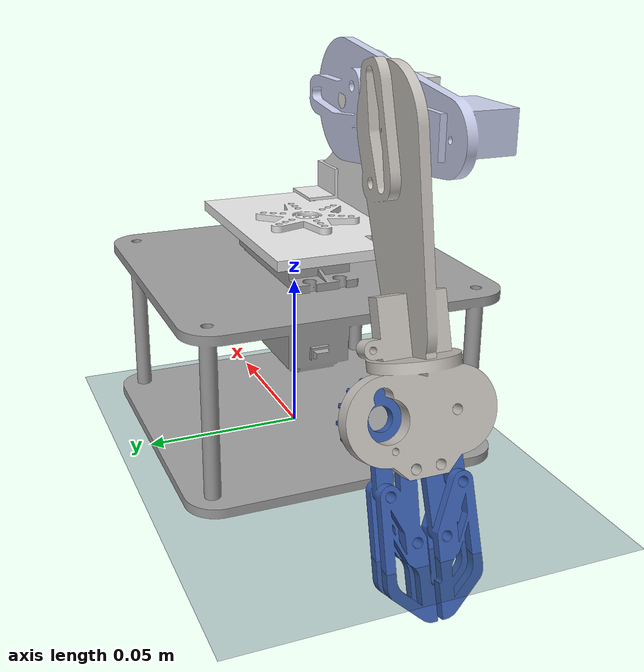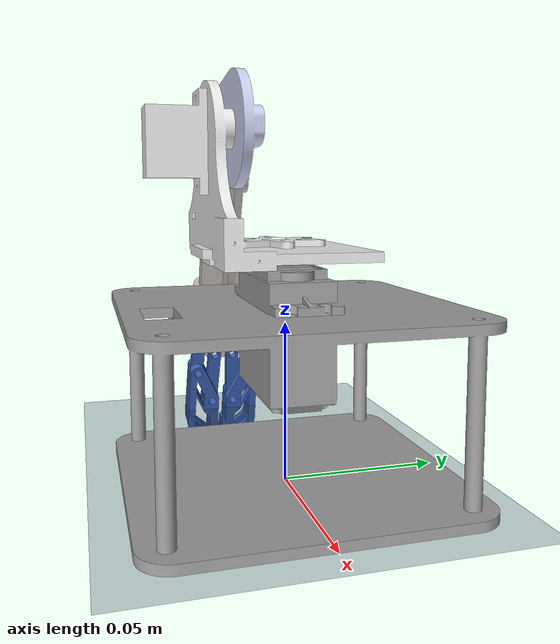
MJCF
<mujoco model="manipulator">
  <compiler angle="radian" meshdir="../meshes" autolimits="true"/>

  <option timestep="0.001" gravity="0 0 -9.81">
    <flag warmstart="enable"/>
  </option>

  <visual>
    <headlight diffuse="0.6 0.6 0.6" ambient="0.3 0.3 0.3" specular="0 0 0"/>
    <rgba haze="0.15 0.25 0.35 1"/>
    <global azimuth="120" elevation="-20"/>
    <quality shadowsize="4096"/>
    <map stiffness="700" shadowscale="0.5" fogstart="10" fogend="15" zfar="40"/>
  </visual>

  <asset>
    <texture name="grid" type="2d" builtin="checker" width="512" height="512"
             rgb1="0.1 0.2 0.3" rgb2="0.2 0.3 0.4"/>
    <material name="grid" texture="grid" texrepeat="16 16" texuniform="true" reflectance="0.2"/>
    <texture name="skybox" type="skybox" builtin="gradient" rgb1="0.3 0.5 0.7" rgb2="0.0 0.0 0.0"
             width="512" height="3072"/>

    <mesh name="base_link"    file="base_link_set_zero.stl"/>
    <mesh name="link_1"       file="link_1_set_zero.stl"/>
    <mesh name="link_2"       file="link_2_set_zero.stl"/>
    <mesh name="link_3"       file="link_3_set_zero.stl"/>
    <mesh name="right_gripper" file="right_gripper_set_zero.stl"/>
    <mesh name="left_gripper"  file="left_gripper_set_zero.stl"/>

    <material name="gray"      rgba="0.627 0.627 0.627 1"/>
    <material name="blue"      rgba="0.792 0.820 0.933 1"/>
    <material name="silver"    rgba="0.776 0.757 0.737 1"/>
    <material name="white"     rgba="0.917 0.917 0.917 1"/>
    <material name="teal"      rgba="0.047 0.471 0.435 1"/>
    <material name="dark_blue" rgba="0.231 0.380 0.706 1"/>
  </asset>

  <worldbody>
    <light name="spotlight" mode="targetbodycom" target="base_link"
           directional="false" diffuse="0.8 0.8 0.8" specular="0.3 0.3 0.3"
           pos="0 0 4.0" dir="0 0 -1" castshadow="true"/>
    <light name="ambient" directional="true" diffuse="0.4 0.4 0.4" specular="0.1 0.1 0.1"
           pos="0 0 3.0" dir="0 0 -1"/>

    <geom name="floor" type="plane" size="2 2 0.1" material="grid" condim="3"/>

    <!-- base_link at world origin; mesh vertices already in world space at zero config -->
    <body name="base_link" pos="0 0 0">
      <inertial pos="0 0 0.04" mass="0.200" diaginertia="1.5e-04 1.5e-04 8.0e-05"/>
      <geom type="mesh" mesh="base_link" pos="0 0 0" material="gray" contype="0" conaffinity="0"/>
      <geom type="mesh" mesh="base_link" pos="0 0 0" material="gray" group="1" contype="0" conaffinity="0"/>

      <!-- joint_1 (base rotation): world pos [-0.011, 0.0001, 0.0729], axis z -->
      <body name="link_1" pos="-0.011 0.0001 0.0729">
        <inertial pos="0 0 0" mass="0.100" diaginertia="8.0e-05 8.0e-05 4.0e-05"/>
        <joint name="joint_1" type="hinge" axis="0 0 -1"
               range="-3.14 3.14" damping="2.0" armature="0.05"/>
        <!-- geom offset = -joint_1_world -->
        <geom type="mesh" mesh="link_1" pos="0.011 -0.0001 -0.0729" material="white" contype="0" conaffinity="0"/>
        <geom type="mesh" mesh="link_1" pos="0.011 -0.0001 -0.0729" material="white" group="1" contype="0" conaffinity="0"/>

        <!-- joint_2 (shoulder): world pos [-0.0105, -0.0141, 0.1089], axis -y -->
        <!-- local pos = joint_2_world - joint_1_world -->
        <body name="link_2" pos="0.0005 -0.0142 0.036">
          <inertial pos="0 0 0" mass="0.030" diaginertia="1.5e-05 1.5e-05 5.0e-06"/>
          <joint name="joint_2" type="hinge" axis="0 1 0"
                 range="-3.14 3.14" damping="3.0" armature="0.08"/>
          <!-- geom offset = -joint_2_world -->
          <geom type="mesh" mesh="link_2" pos="0.0105 0.0141 -0.1089" material="blue" contype="0" conaffinity="0"/>
          <geom type="mesh" mesh="link_2" pos="0.0105 0.0141 -0.1089" material="blue" group="1" contype="0" conaffinity="0"/>

          <!-- joint_3 (elbow): world pos [-0.0565, -0.0057, 0.1088], axis -z -->
          <!-- local pos = joint_3_world - joint_2_world -->
          <body name="link_3" pos="-0.046 0.0084 -0.0001">
            <inertial pos="0 0 0" mass="0.030" diaginertia="1.5e-05 1.5e-05 5.0e-06"/>
            <joint name="joint_3" type="hinge" axis="0 -1 0"
                   range="-3.14 3.14" damping="2.0" armature="0.05"/>
            <!-- geom offset = -joint_3_world -->
            <geom type="mesh" mesh="link_3" pos="0.0565 0.0057 -0.1088" material="silver" contype="0" conaffinity="0"/>
            <geom type="mesh" mesh="link_3" pos="0.0565 0.0057 -0.1088" material="silver" group="1" contype="0" conaffinity="0"/>

            <!-- right gripper: world pos [-0.0798, -0.0079, 0.0243], axis -z -->
            <!-- local pos = right_gripper_world - joint_3_world -->
            <body name="claw_right" pos="-0.0233 -0.0022 -0.0845">
              <inertial pos="0 0 0" mass="0.005" diaginertia="1.0e-06 1.0e-06 1.0e-06"/>
              <joint name="joint_4" type="hinge" axis="0 0 -1"
                     range="-0.8 0.8" damping="0.2" armature="0.005"/>
              <!-- geom offset = -right_gripper_world -->
              <geom type="mesh" mesh="right_gripper" pos="0.0798 0.0079 -0.0243" material="dark_blue" contype="0" conaffinity="0"/>
              <geom type="mesh" mesh="right_gripper" pos="0.0798 0.0079 -0.0243" material="dark_blue" group="1" contype="0" conaffinity="0"/>
            </body>

            <!-- left gripper: world pos [-0.0798, -0.0006, 0.0243], axis +z -->
            <!-- local pos = left_gripper_world - joint_3_world -->
            <body name="claw_left" pos="-0.0233 0.0051 -0.0845">
              <inertial pos="0 0 0" mass="0.005" diaginertia="1.0e-06 1.0e-06 1.0e-06"/>
              <joint name="joint_5" type="hinge" axis="0 0 1"
                     range="-0.8 0.8" damping="0.2" armature="0.005"/>
              <!-- geom offset = -left_gripper_world -->
              <geom type="mesh" mesh="left_gripper" pos="0.0798 0.0006 -0.0243" material="dark_blue" contype="0" conaffinity="0"/>
              <geom type="mesh" mesh="left_gripper" pos="0.0798 0.0006 -0.0243" material="dark_blue" group="1" contype="0" conaffinity="0"/>
            </body>
          </body>
        </body>
      </body>
    </body>
  </worldbody>

  <actuator>
    <position name="joint_1_actuator" joint="joint_1" kp="80"  kv="8"  ctrlrange="-3.14 3.14"/>
    <position name="joint_2_actuator" joint="joint_2" kp="150" kv="15" ctrlrange="-3.14 3.14"/>
    <position name="joint_3_actuator" joint="joint_3" kp="100" kv="10" ctrlrange="-3.14 3.14"/>
    <position name="joint_4_actuator" joint="joint_4" kp="20"  kv="1"  ctrlrange="-0.8 0.8"/>
    <position name="joint_5_actuator" joint="joint_5" kp="20"  kv="1"  ctrlrange="-0.8 0.8"/>
  </actuator>

  <sensor>
    <jointpos name="joint_1_pos" joint="joint_1"/>
    <jointpos name="joint_2_pos" joint="joint_2"/>
    <jointpos name="joint_3_pos" joint="joint_3"/>
    <jointpos name="joint_4_pos" joint="joint_4"/>
    <jointpos name="joint_5_pos" joint="joint_5"/>

    <jointvel name="joint_1_vel" joint="joint_1"/>
    <jointvel name="joint_2_vel" joint="joint_2"/>
    <jointvel name="joint_3_vel" joint="joint_3"/>
    <jointvel name="joint_4_vel" joint="joint_4"/>
    <jointvel name="joint_5_vel" joint="joint_5"/>
  </sensor>
</mujoco>
